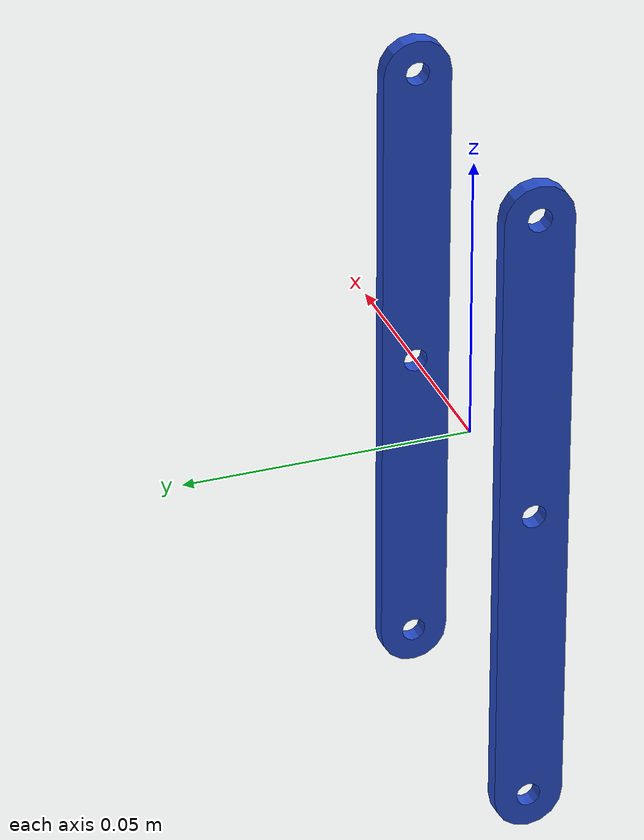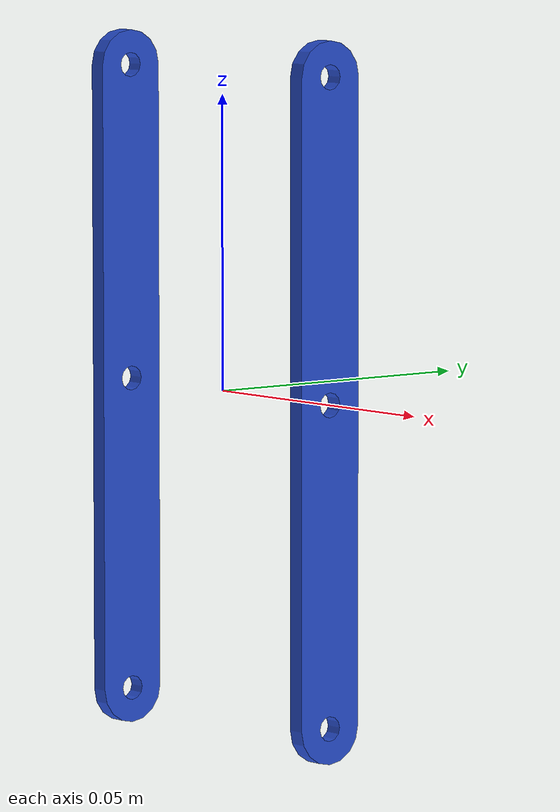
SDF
<?xml version="1.0" ?>

  <sdf version="1.5">
    <model name="iwp_claw_pole">
      <link name='base_link'>
      <inertial>
        <pose>0 0 0 0 0 0</pose>
        <mass>0.1</mass>
        <inertia>
          <ixx>0.01</ixx>
          <ixy>0</ixy>
          <ixz>0</ixz>
          <iyy>0.01</iyy>
          <iyz>0</iyz>
          <izz>0.01</izz>
        </inertia>
      </inertial>
    </link>
    <link name='pole_0'>
    <pose>-0.027 -0.0 0.0 0 -0 0</pose>
    <inertial>
      <pose>0 0 0 0 -0 0</pose>
      <mass>0.025</mass>
      <inertia>
        <ixx>9.75e-06</ixx>
        <ixy>0</ixy>
        <ixz>0</ixz>
        <iyy>0.000166704</iyy>
        <iyz>0</iyz>
        <izz>0.000167604</izz>
      </inertia>
    </inertial>
    <collision name='pole_0_collision'>
      <pose>0 0 0 0 -0 0</pose>
      <geometry>
        <mesh>
          <scale>1 1 1</scale>
          <uri>model://iwp_claw_pole/meshes/claw_pole.STL</uri>
        </mesh>
      </geometry>
      <surface>
        <contact>
          <ode />
        </contact>
        <friction>
          <ode />
        </friction>
      </surface>
    </collision>
    <visual name='pole_0_visual'>
      <pose>0 0 0 0 -0 0</pose>
      <geometry>
        <mesh>
          <scale>1 1 1</scale>
          <uri>model://iwp_claw_pole/meshes/claw_pole.STL</uri>
        </mesh>
      </geometry>
      <material>
        <script>
          <name>Gazebo/Blue</name>
          <uri>__default__</uri>
        </script>
      </material>
    </visual>
    <gravity>1</gravity>
    <velocity_decay />
    <self_collide>0</self_collide>
  </link>
  <link name='pole_1'>
  <pose>0.027 -0.0 0.0 0 -0 0</pose>
  <inertial>
    <pose>0 0 0 0 -0 0</pose>
    <mass>0.025</mass>
    <inertia>
      <ixx>9.75e-06</ixx>
      <ixy>0</ixy>
      <ixz>0</ixz>
      <iyy>0.000166704</iyy>
      <iyz>0</iyz>
      <izz>0.000167604</izz>
    </inertia>
  </inertial>
  <collision name='pole_0_collision'>
    <pose>0 0 0 0 -0 0</pose>
    <geometry>
      <mesh>
        <scale>1 1 1</scale>
        <uri>model://iwp_claw_pole/meshes/claw_pole.STL</uri>
      </mesh>
    </geometry>
    <surface>
      <contact>
        <ode />
      </contact>
      <friction>
        <ode />
      </friction>
    </surface>
  </collision>
  <visual name='pole_0_visual'>
    <pose>0 0 0 0 -0 0</pose>
    <geometry>
      <mesh>
        <scale>1 1 1</scale>
        <uri>model://iwp_claw_pole/meshes/claw_pole.STL</uri>
      </mesh>
    </geometry>
    <material>
      <script>
        <name>Gazebo/Blue</name>
        <uri>__default__</uri>
      </script>
    </material>
  </visual>
  <gravity>1</gravity>
  <velocity_decay />
  <self_collide>0</self_collide>
</link>
<joint name="claw_pole_joint" type="fixed">
  <parent>pole_0</parent>
  <child>pole_1</child>
  <pose>0.0 0 0.0 0 0 0</pose>
</joint>
<joint name="base_link_joint" type="fixed">
  <parent>base_link</parent>
  <child>pole_1</child>
  <pose>0.0 0 0.0 0 0 0</pose>
</joint>
</model>
</sdf>
